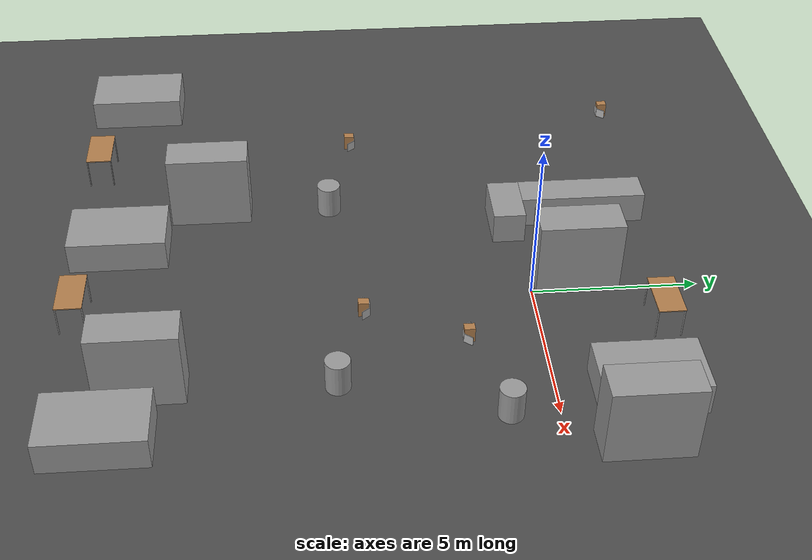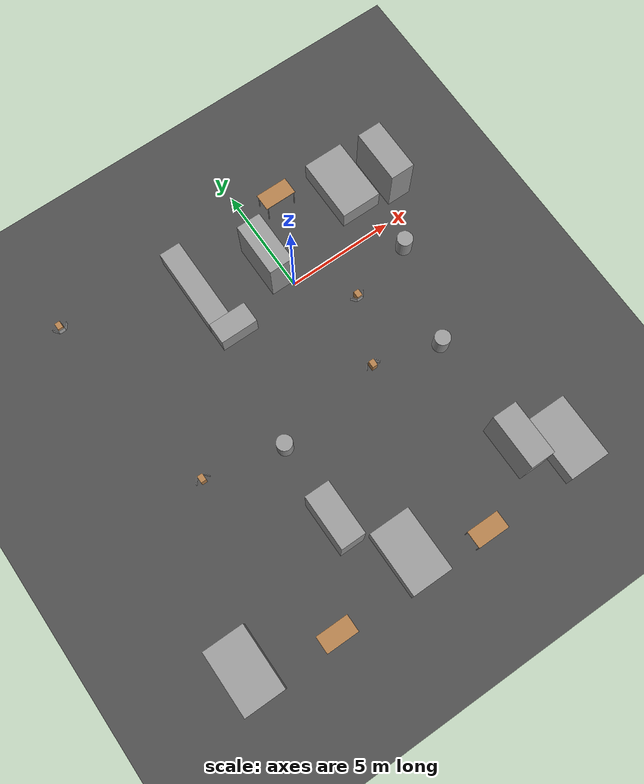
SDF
<sdf version="1.6">
 <world name="default">
  <model name="ground_plane">
   <static>1</static>
   <link name="link">
    <collision name="collision">
     <geometry><plane><normal>0 0 1</normal><size>100 100</size></plane></geometry>
     <surface><friction><ode><mu>100</mu><mu2>50</mu2></ode></friction></surface>
    </collision>
    <visual name="visual">
     <cast_shadows>0</cast_shadows>
     <geometry><plane><normal>0 0 1</normal><size>100 100</size></plane></geometry>
     <material>
      <script><uri>file://media/materials/scripts/gazebo.material</uri><name>Gazebo/DarkGrey</name></script>
     </material>
    </visual>
   </link>
  </model>
  <model name="table">
   <static>1</static>
   <link name="link">
    <collision name="surface">
     <pose>0 0 1 0 -0 0</pose>
     <geometry><box><size>1.5 0.8 0.03</size></box></geometry>
     <surface><friction><ode><mu>0.6</mu><mu2>0.6</mu2></ode></friction></surface>
    </collision>
    <visual name="visual1">
     <pose>0 0 1 0 -0 0</pose>
     <geometry><box><size>1.5 0.8 0.03</size></box></geometry>
     <material>
      <script><uri>file://media/materials/scripts/gazebo.material</uri><name>Gazebo/Wood</name></script>
     </material>
    </visual>
    <collision name="front_left_leg">
     <pose>0.68 0.38 0.5 0 -0 0</pose>
     <geometry><cylinder><radius>0.02</radius><length>1</length></cylinder></geometry>
    </collision>
    <visual name="front_left_leg">
     <pose>0.68 0.38 0.5 0 -0 0</pose>
     <geometry><cylinder><radius>0.02</radius><length>1</length></cylinder></geometry>
     <material>
      <script><uri>file://media/materials/scripts/gazebo.material</uri><name>Gazebo/Grey</name></script>
     </material>
    </visual>
    <collision name="front_right_leg">
     <pose>0.68 -0.38 0.5 0 -0 0</pose>
     <geometry><cylinder><radius>0.02</radius><length>1</length></cylinder></geometry>
    </collision>
    <visual name="front_right_leg">
     <pose>0.68 -0.38 0.5 0 -0 0</pose>
     <geometry><cylinder><radius>0.02</radius><length>1</length></cylinder></geometry>
     <material>
      <script><uri>file://media/materials/scripts/gazebo.material</uri><name>Gazebo/Grey</name></script>
     </material>
    </visual>
    <collision name="back_right_leg">
     <pose>-0.68 -0.38 0.5 0 -0 0</pose>
     <geometry><cylinder><radius>0.02</radius><length>1</length></cylinder></geometry>
    </collision>
    <visual name="back_right_leg">
     <pose>-0.68 -0.38 0.5 0 -0 0</pose>
     <geometry><cylinder><radius>0.02</radius><length>1</length></cylinder></geometry>
     <material>
      <script><uri>file://media/materials/scripts/gazebo.material</uri><name>Gazebo/Grey</name></script>
     </material>
    </visual>
    <collision name="back_left_leg">
     <pose>-0.68 0.38 0.5 0 -0 0</pose>
     <geometry><cylinder><radius>0.02</radius><length>1</length></cylinder></geometry>
    </collision>
    <visual name="back_left_leg">
     <pose>-0.68 0.38 0.5 0 -0 0</pose>
     <geometry><cylinder><radius>0.02</radius><length>1</length></cylinder></geometry>
     <material>
      <script><uri>file://media/materials/scripts/gazebo.material</uri><name>Gazebo/Grey</name></script>
     </material>
    </visual>
   </link>
   <pose>-7.07906 -13.3673 0 0 -0 0</pose>
  </model>
  <model name="unit_box_1_clone">
   <pose>-2.83505 -12.4182 0.5 0 1e-06 1e-06</pose>
   <link name="link">
    <inertial>
     <mass>1</mass>
     <inertia>
      <ixx>0.166667</ixx>
      <ixy>0</ixy>
      <ixz>0</ixz>
      <iyy>0.166667</iyy>
      <iyz>0</iyz>
      <izz>0.166667</izz>
     </inertia>
    </inertial>
    <collision name="collision"><geometry><box><size>1.90543 2.99439 1</size></box></geometry></collision>
    <visual name="visual">
     <geometry><box><size>1.90543 2.99439 1</size></box></geometry>
     <material>
      <script><name>Gazebo/Grey</name><uri>file://media/materials/scripts/gazebo.material</uri></script>
     </material>
    </visual>
   </link>
  </model>
  <model name="unit_box_1_clone_0">
   <pose>5.20571 -12.3359 0.499826 -0.000116 -0 -2e-06</pose>
   <link name="link">
    <inertial>
     <mass>1</mass>
     <inertia>
      <ixx>0.166667</ixx>
      <ixy>0</ixy>
      <ixz>0</ixz>
      <iyy>0.166667</iyy>
      <iyz>0</iyz>
      <izz>0.166667</izz>
     </inertia>
    </inertial>
    <collision name="collision"><geometry><box><size>1.90543 2.99439 1</size></box></geometry></collision>
    <visual name="visual">
     <geometry><box><size>1.90543 2.99439 1</size></box></geometry>
     <material>
      <script><name>Gazebo/Grey</name><uri>file://media/materials/scripts/gazebo.material</uri></script>
     </material>
    </visual>
   </link>
  </model>
  <model name="unit_box_1_clone_5">
   <pose>4.33951 2.52234 0.499989 0 1.2e-05 -0.000106</pose>
   <link name="link">
    <inertial>
     <mass>1</mass>
     <inertia>
      <ixx>0.166667</ixx>
      <ixy>0</ixy>
      <ixz>0</ixz>
      <iyy>0.166667</iyy>
      <iyz>0</iyz>
      <izz>0.166667</izz>
     </inertia>
    </inertial>
    <collision name="collision"><geometry><box><size>1.90543 2.99439 1</size></box></geometry></collision>
    <visual name="visual">
     <geometry><box><size>1.90543 2.99439 1</size></box></geometry>
     <material>
      <script><name>Gazebo/Grey</name><uri>file://media/materials/scripts/gazebo.material</uri></script>
     </material>
    </visual>
   </link>
  </model>
  <model name="unit_cylinder_clone">
   <pose>3.5861 -5.9388 0.499992 0 -0 0</pose>
   <link name="link">
    <inertial>
     <mass>1</mass>
     <inertia><ixx>0.145833</ixx><ixy>0</ixy><ixz>0</ixz><iyy>0.145833</iyy><iyz>0</iyz><izz>0.125</izz></inertia>
    </inertial>
    <collision name="collision">
     <geometry><cylinder><radius>0.361483</radius><length>1</length></cylinder></geometry>
    </collision>
    <visual name="visual">
     <geometry><cylinder><radius>0.361483</radius><length>1</length></cylinder></geometry>
     <material>
      <script><name>Gazebo/Grey</name><uri>file://media/materials/scripts/gazebo.material</uri></script>
     </material>
    </visual>
   </link>
  </model>
  <model name="unit_box_2_clone">
   <pose>3.35905 -11.3146 1.1904 4e-06 -1e-06 8.5e-05</pose>
   <link name="link">
    <inertial>
     <mass>1</mass>
     <inertia>
      <ixx>0.166667</ixx>
      <ixy>0</ixy>
      <ixz>0</ixz>
      <iyy>0.166667</iyy>
      <iyz>0</iyz>
      <izz>0.166667</izz>
     </inertia>
    </inertial>
    <collision name="collision"><geometry><box><size>1.13758 2.51147 2.38082</size></box></geometry></collision>
    <visual name="visual">
     <geometry><box><size>1.13758 2.51147 2.38082</size></box></geometry>
     <material>
      <script><name>Gazebo/Grey</name><uri>file://media/materials/scripts/gazebo.material</uri></script>
     </material>
    </visual>
   </link>
  </model>
  <model name="unit_box_2_clone_5">
   <pose>6.23937 2.00477 1.19041 0 -0 8.3e-05</pose>
   <link name="link">
    <inertial>
     <mass>1</mass>
     <inertia>
      <ixx>0.166667</ixx>
      <ixy>0</ixy>
      <ixz>0</ixz>
      <iyy>0.166667</iyy>
      <iyz>0</iyz>
      <izz>0.166667</izz>
     </inertia>
    </inertial>
    <collision name="collision"><geometry><box><size>1.13758 2.51147 2.38082</size></box></geometry></collision>
    <visual name="visual">
     <geometry><box><size>1.13758 2.51147 2.38082</size></box></geometry>
     <material>
      <script><name>Gazebo/Grey</name><uri>file://media/materials/scripts/gazebo.material</uri></script>
     </material>
    </visual>
   </link>
  </model>
  <model name="unit_box_2_clone_6">
   <pose>-0.469652 1.38013 1.1904 4e-06 -1e-06 8.7e-05</pose>
   <link name="link">
    <inertial>
     <mass>1</mass>
     <inertia>
      <ixx>0.166667</ixx>
      <ixy>0</ixy>
      <ixz>0</ixz>
      <iyy>0.166667</iyy>
      <iyz>0</iyz>
      <izz>0.166667</izz>
     </inertia>
    </inertial>
    <collision name="collision"><geometry><box><size>1.13758 2.51147 2.38082</size></box></geometry></collision>
    <visual name="visual">
     <geometry><box><size>1.13758 2.51147 2.38082</size></box></geometry>
     <material>
      <script><name>Gazebo/Grey</name><uri>file://media/materials/scripts/gazebo.material</uri></script>
     </material>
    </visual>
   </link>
  </model>
  <model name="table_clone">
   <static>1</static>
   <link name="link">
    <collision name="surface">
     <pose>0 0 1 0 -0 0</pose>
     <geometry><box><size>1.5 0.8 0.03</size></box></geometry>
     <surface><friction><ode><mu>0.6</mu><mu2>0.6</mu2></ode></friction></surface>
    </collision>
    <visual name="visual1">
     <pose>0 0 1 0 -0 0</pose>
     <geometry><box><size>1.5 0.8 0.03</size></box></geometry>
     <material>
      <script><uri>file://media/materials/scripts/gazebo.material</uri><name>Gazebo/Wood</name></script>
     </material>
    </visual>
    <collision name="front_left_leg">
     <pose>0.68 0.38 0.5 0 -0 0</pose>
     <geometry><cylinder><radius>0.02</radius><length>1</length></cylinder></geometry>
    </collision>
    <visual name="front_left_leg">
     <pose>0.68 0.38 0.5 0 -0 0</pose>
     <geometry><cylinder><radius>0.02</radius><length>1</length></cylinder></geometry>
     <material>
      <script><uri>file://media/materials/scripts/gazebo.material</uri><name>Gazebo/Grey</name></script>
     </material>
    </visual>
    <collision name="front_right_leg">
     <pose>0.68 -0.38 0.5 0 -0 0</pose>
     <geometry><cylinder><radius>0.02</radius><length>1</length></cylinder></geometry>
    </collision>
    <visual name="front_right_leg">
     <pose>0.68 -0.38 0.5 0 -0 0</pose>
     <geometry><cylinder><radius>0.02</radius><length>1</length></cylinder></geometry>
     <material>
      <script><uri>file://media/materials/scripts/gazebo.material</uri><name>Gazebo/Grey</name></script>
     </material>
    </visual>
    <collision name="back_right_leg">
     <pose>-0.68 -0.38 0.5 0 -0 0</pose>
     <geometry><cylinder><radius>0.02</radius><length>1</length></cylinder></geometry>
    </collision>
    <visual name="back_right_leg">
     <pose>-0.68 -0.38 0.5 0 -0 0</pose>
     <geometry><cylinder><radius>0.02</radius><length>1</length></cylinder></geometry>
     <material>
      <script><uri>file://media/materials/scripts/gazebo.material</uri><name>Gazebo/Grey</name></script>
     </material>
    </visual>
    <collision name="back_left_leg">
     <pose>-0.68 0.38 0.5 0 -0 0</pose>
     <geometry><cylinder><radius>0.02</radius><length>1</length></cylinder></geometry>
    </collision>
    <visual name="back_left_leg">
     <pose>-0.68 0.38 0.5 0 -0 0</pose>
     <geometry><cylinder><radius>0.02</radius><length>1</length></cylinder></geometry>
     <material>
      <script><uri>file://media/materials/scripts/gazebo.material</uri><name>Gazebo/Grey</name></script>
     </material>
    </visual>
   </link>
   <pose>0.212931 -13.4896 0 0 -0 0</pose>
  </model>
  <model name="table_clone_5">
   <static>1</static>
   <link name="link">
    <collision name="surface">
     <pose>0 0 1 0 -0 0</pose>
     <geometry><box><size>1.5 0.8 0.03</size></box></geometry>
     <surface><friction><ode><mu>0.6</mu><mu2>0.6</mu2></ode></friction></surface>
    </collision>
    <visual name="visual1">
     <pose>0 0 1 0 -0 0</pose>
     <geometry><box><size>1.5 0.8 0.03</size></box></geometry>
     <material>
      <script><uri>file://media/materials/scripts/gazebo.material</uri><name>Gazebo/Wood</name></script>
     </material>
    </visual>
    <collision name="front_left_leg">
     <pose>0.68 0.38 0.5 0 -0 0</pose>
     <geometry><cylinder><radius>0.02</radius><length>1</length></cylinder></geometry>
    </collision>
    <visual name="front_left_leg">
     <pose>0.68 0.38 0.5 0 -0 0</pose>
     <geometry><cylinder><radius>0.02</radius><length>1</length></cylinder></geometry>
     <material>
      <script><uri>file://media/materials/scripts/gazebo.material</uri><name>Gazebo/Grey</name></script>
     </material>
    </visual>
    <collision name="front_right_leg">
     <pose>0.68 -0.38 0.5 0 -0 0</pose>
     <geometry><cylinder><radius>0.02</radius><length>1</length></cylinder></geometry>
    </collision>
    <visual name="front_right_leg">
     <pose>0.68 -0.38 0.5 0 -0 0</pose>
     <geometry><cylinder><radius>0.02</radius><length>1</length></cylinder></geometry>
     <material>
      <script><uri>file://media/materials/scripts/gazebo.material</uri><name>Gazebo/Grey</name></script>
     </material>
    </visual>
    <collision name="back_right_leg">
     <pose>-0.68 -0.38 0.5 0 -0 0</pose>
     <geometry><cylinder><radius>0.02</radius><length>1</length></cylinder></geometry>
    </collision>
    <visual name="back_right_leg">
     <pose>-0.68 -0.38 0.5 0 -0 0</pose>
     <geometry><cylinder><radius>0.02</radius><length>1</length></cylinder></geometry>
     <material>
      <script><uri>file://media/materials/scripts/gazebo.material</uri><name>Gazebo/Grey</name></script>
     </material>
    </visual>
    <collision name="back_left_leg">
     <pose>-0.68 0.38 0.5 0 -0 0</pose>
     <geometry><cylinder><radius>0.02</radius><length>1</length></cylinder></geometry>
    </collision>
    <visual name="back_left_leg">
     <pose>-0.68 0.38 0.5 0 -0 0</pose>
     <geometry><cylinder><radius>0.02</radius><length>1</length></cylinder></geometry>
     <material>
      <script><uri>file://media/materials/scripts/gazebo.material</uri><name>Gazebo/Grey</name></script>
     </material>
    </visual>
   </link>
   <pose>1.53607 3.61586 0 0 -0 0</pose>
  </model>
  <model name="Support_box_wood_clone">
   <link name="link">
    <inertial>
     <mass>0.0406949</mass>
     <inertia>
      <ixx>0.00114102</ixx>
      <ixy>0</ixy>
      <ixz>0</ixz>
      <iyy>0.00102768</iyy>
      <iyz>0</iyz>
      <izz>0.000581951</izz>
     </inertia>
    </inertial>
    <pose>0.062754 0.860403 -0.243846 0 -0 0</pose>
    <visual name="visual">
     <geometry><box><size>0.252854 0.320175 0.483682</size></box></geometry>
     <material>
      <script><name>Gazebo/Wood</name><uri>file://media/materials/scripts/gazebo.material</uri></script>
      <shader type="vertex"><normal_map>__default__</normal_map></shader>
      <ambient>0.3 0.3 0.3 1</ambient>
      <diffuse>0.7 0.7 0.7 1</diffuse>
      <specular>0.01 0.01 0.01 1</specular>
      <emissive>0 0 0 1</emissive>
     </material>
    </visual>
    <visual name="ModelPreview_4::link::visual_1">
     <geometry><box><size>0.252854 0.320175 0.483682</size></box></geometry>
     <material>
      <script><name>Gazebo/Wood</name><uri>file://media/materials/scripts/gazebo.material</uri></script>
      <shader type="vertex"><normal_map>__default__</normal_map></shader>
      <ambient>0.3 0.3 0.3 1</ambient>
      <diffuse>0.7 0.7 0.7 1</diffuse>
      <specular>0.01 0.01 0.01 1</specular>
      <emissive>0 0 0 1</emissive>
     </material>
    </visual>
    <collision name="collision">
     <geometry><box><size>0.262854 0.320175 0.483683</size></box></geometry>
     <surface>
      <friction>
       <ode><mu>1</mu><mu2>1</mu2><fdir1>0 0 0</fdir1><slip1>0</slip1><slip2>0</slip2></ode>
       <torsional>
        <coefficient>1</coefficient>
        <patch_radius>0</patch_radius>
        <surface_radius>0</surface_radius>
        <use_patch_radius>1</use_patch_radius>
        <ode><slip>0</slip></ode>
       </torsional>
      </friction>
      <bounce><restitution_coefficient>0</restitution_coefficient><threshold>1e+06</threshold></bounce>
      <contact>
       <collide_without_contact>0</collide_without_contact>
       <collide_without_contact_bitmask>1</collide_without_contact_bitmask>
       <collide_bitmask>1</collide_bitmask>
       <ode>
        <soft_cfm>0</soft_cfm>
        <soft_erp>0.2</soft_erp>
        <kp>1e+13</kp>
        <kd>1</kd>
        <max_vel>0.01</max_vel>
        <min_depth>0</min_depth>
       </ode>
       <bullet>
        <split_impulse>1</split_impulse>
        <split_impulse_penetration_threshold>-0.01</split_impulse_penetration_threshold>
        <soft_cfm>0</soft_cfm>
        <soft_erp>0.2</soft_erp>
        <kp>1e+13</kp>
        <kd>1</kd>
       </bullet>
      </contact>
     </surface>
    </collision>
   </link>
   <static>0</static>
   <pose>0.557098 -5.92548 0.485688 -0 -0 -0.000578</pose>
  </model>
  <model name="Support_box_wood_clone_1">
   <link name="link">
    <inertial>
     <mass>0.0406949</mass>
     <inertia>
      <ixx>0.00114102</ixx>
      <ixy>0</ixy>
      <ixz>0</ixz>
      <iyy>0.00102768</iyy>
      <iyz>0</iyz>
      <izz>0.000581951</izz>
     </inertia>
    </inertial>
    <pose>0.062754 0.860403 -0.243846 0 -0 0</pose>
    <visual name="visual">
     <geometry><box><size>0.252854 0.320175 0.483682</size></box></geometry>
     <material>
      <script><name>Gazebo/Wood</name><uri>file://media/materials/scripts/gazebo.material</uri></script>
      <shader type="vertex"><normal_map>__default__</normal_map></shader>
      <ambient>0.3 0.3 0.3 1</ambient>
      <diffuse>0.7 0.7 0.7 1</diffuse>
      <specular>0.01 0.01 0.01 1</specular>
      <emissive>0 0 0 1</emissive>
     </material>
    </visual>
    <visual name="ModelPreview_4::link::visual_1">
     <geometry><box><size>0.252854 0.320175 0.483682</size></box></geometry>
     <material>
      <script><name>Gazebo/Wood</name><uri>file://media/materials/scripts/gazebo.material</uri></script>
      <shader type="vertex"><normal_map>__default__</normal_map></shader>
      <ambient>0.3 0.3 0.3 1</ambient>
      <diffuse>0.7 0.7 0.7 1</diffuse>
      <specular>0.01 0.01 0.01 1</specular>
      <emissive>0 0 0 1</emissive>
     </material>
    </visual>
    <collision name="collision">
     <geometry><box><size>0.262854 0.320175 0.483683</size></box></geometry>
     <surface>
      <friction>
       <ode><mu>1</mu><mu2>1</mu2><fdir1>0 0 0</fdir1><slip1>0</slip1><slip2>0</slip2></ode>
       <torsional>
        <coefficient>1</coefficient>
        <patch_radius>0</patch_radius>
        <surface_radius>0</surface_radius>
        <use_patch_radius>1</use_patch_radius>
        <ode><slip>0</slip></ode>
       </torsional>
      </friction>
      <bounce><restitution_coefficient>0</restitution_coefficient><threshold>1e+06</threshold></bounce>
      <contact>
       <collide_without_contact>0</collide_without_contact>
       <collide_without_contact_bitmask>1</collide_without_contact_bitmask>
       <collide_bitmask>1</collide_bitmask>
       <ode>
        <soft_cfm>0</soft_cfm>
        <soft_erp>0.2</soft_erp>
        <kp>1e+13</kp>
        <kd>1</kd>
        <max_vel>0.01</max_vel>
        <min_depth>0</min_depth>
       </ode>
       <bullet>
        <split_impulse>1</split_impulse>
        <split_impulse_penetration_threshold>-0.01</split_impulse_penetration_threshold>
        <soft_cfm>0</soft_cfm>
        <soft_erp>0.2</soft_erp>
        <kp>1e+13</kp>
        <kd>1</kd>
       </bullet>
      </contact>
     </surface>
    </collision>
   </link>
   <static>0</static>
   <pose>-9.55632 3.17912 0.485687 0 -0 0</pose>
  </model>
  <model name="Support_box_wood_clone_1_clone">
   <link name="link">
    <inertial>
     <mass>0.0406949</mass>
     <inertia>
      <ixx>0.00114102</ixx>
      <ixy>0</ixy>
      <ixz>0</ixz>
      <iyy>0.00102768</iyy>
      <iyz>0</iyz>
      <izz>0.000581951</izz>
     </inertia>
    </inertial>
    <pose>0.062754 0.860403 -0.243846 0 -0 0</pose>
    <visual name="visual">
     <geometry><box><size>0.252854 0.320175 0.483682</size></box></geometry>
     <material>
      <script><name>Gazebo/Wood</name><uri>file://media/materials/scripts/gazebo.material</uri></script>
      <shader type="vertex"><normal_map>__default__</normal_map></shader>
      <ambient>0.3 0.3 0.3 1</ambient>
      <diffuse>0.7 0.7 0.7 1</diffuse>
      <specular>0.01 0.01 0.01 1</specular>
      <emissive>0 0 0 1</emissive>
     </material>
    </visual>
    <visual name="ModelPreview_4::link::visual_1">
     <geometry><box><size>0.252854 0.320175 0.483682</size></box></geometry>
     <material>
      <script><name>Gazebo/Wood</name><uri>file://media/materials/scripts/gazebo.material</uri></script>
      <shader type="vertex"><normal_map>__default__</normal_map></shader>
      <ambient>0.3 0.3 0.3 1</ambient>
      <diffuse>0.7 0.7 0.7 1</diffuse>
      <specular>0.01 0.01 0.01 1</specular>
      <emissive>0 0 0 1</emissive>
     </material>
    </visual>
    <collision name="collision">
     <geometry><box><size>0.262854 0.320175 0.483683</size></box></geometry>
     <surface>
      <friction>
       <ode><mu>1</mu><mu2>1</mu2><fdir1>0 0 0</fdir1><slip1>0</slip1><slip2>0</slip2></ode>
       <torsional>
        <coefficient>1</coefficient>
        <patch_radius>0</patch_radius>
        <surface_radius>0</surface_radius>
        <use_patch_radius>1</use_patch_radius>
        <ode><slip>0</slip></ode>
       </torsional>
      </friction>
      <bounce><restitution_coefficient>0</restitution_coefficient><threshold>1e+06</threshold></bounce>
      <contact>
       <collide_without_contact>0</collide_without_contact>
       <collide_without_contact_bitmask>1</collide_without_contact_bitmask>
       <collide_bitmask>1</collide_bitmask>
       <ode>
        <soft_cfm>0</soft_cfm>
        <soft_erp>0.2</soft_erp>
        <kp>1e+13</kp>
        <kd>1</kd>
        <max_vel>0.01</max_vel>
        <min_depth>0</min_depth>
       </ode>
       <bullet>
        <split_impulse>1</split_impulse>
        <split_impulse_penetration_threshold>-0.01</split_impulse_penetration_threshold>
        <soft_cfm>0</soft_cfm>
        <soft_erp>0.2</soft_erp>
        <kp>1e+13</kp>
        <kd>1</kd>
       </bullet>
      </contact>
     </surface>
    </collision>
   </link>
   <static>0</static>
   <pose>1.86797 -2.97385 0.485687 0 -0 0.0004</pose>
  </model>
  <model name="Aruco tag200">
   <static>1</static>
   <link name="robot_link">
    <visual name="body_visual">
     <geometry><box><size>0.3 0.3 0.02</size></box></geometry>
     <material>
      <script><uri>model://tag_200/materials/scripts/tag.material</uri><name>aruco_tag_200</name></script>
     </material>
    </visual>
   </link>
   <pose>-9.50073 3.86665 0.2 -1.57 0 0</pose>
  </model>
  <model name="Aruco tag200_clone">
   <static>1</static>
   <link name="robot_link">
    <visual name="body_visual">
     <geometry><box><size>0.3 0.3 0.02</size></box></geometry>
     <material>
      <script><uri>model://tag_200/materials/scripts/tag.material</uri><name>aruco_tag_200</name></script>
     </material>
    </visual>
   </link>
   <pose>-9.25389 3.98449 0.2 -1.57 -0 0.909999</pose>
  </model>
  <model name="Aruco tag200_clone_clone">
   <static>1</static>
   <link name="robot_link">
    <visual name="body_visual">
     <geometry><box><size>0.3 0.3 0.02</size></box></geometry>
     <material>
      <script><uri>model://tag_200/materials/scripts/tag.material</uri><name>aruco_tag_200</name></script>
     </material>
    </visual>
   </link>
   <pose>-9.74954 3.98724 0.2 -1.57 -0 -0.909999</pose>
  </model>
  <model name="Aruco tag100">
   <static>1</static>
   <link name="robot_link">
    <visual name="body_visual">
     <geometry><box><size>0.3 0.3 0.02</size></box></geometry>
     <material>
      <script><uri>model://tag_100/materials/scripts/tag.material</uri><name>aruco_tag_100</name></script>
     </material>
    </visual>
   </link>
   <pose>-8.06491 -4.89398 0.2 1.57 -0 0</pose>
  </model>
  <model name="Aruco tag100_clone">
   <static>1</static>
   <link name="robot_link">
    <visual name="body_visual">
     <geometry><box><size>0.3 0.3 0.02</size></box></geometry>
     <material>
      <script><uri>model://tag_100/materials/scripts/tag.material</uri><name>aruco_tag_100</name></script>
     </material>
    </visual>
   </link>
   <pose>-8.31219 -5.01566 0.2 1.57 -0 0.909999</pose>
  </model>
  <model name="Aruco tag100_clone_clone">
   <static>1</static>
   <link name="robot_link">
    <visual name="body_visual">
     <geometry><box><size>0.3 0.3 0.02</size></box></geometry>
     <material>
      <script><uri>model://tag_100/materials/scripts/tag.material</uri><name>aruco_tag_100</name></script>
     </material>
    </visual>
   </link>
   <pose>-7.81879 -5.01373 0.2 1.57 -0 -0.909999</pose>
  </model>
  <model name="Aruco tag101">
   <static>1</static>
   <link name="robot_link">
    <visual name="body_visual">
     <geometry><box><size>0.3 0.3 0.02</size></box></geometry>
     <material>
      <script><uri>model://tag_101/materials/scripts/tag.material</uri><name>aruco_tag_101</name></script>
     </material>
    </visual>
   </link>
   <pose>0.61676 -4.88489 0.2 1.57 -0 0</pose>
  </model>
  <model name="Aruco tag101_clone">
   <static>1</static>
   <link name="robot_link">
    <visual name="body_visual">
     <geometry><box><size>0.3 0.3 0.02</size></box></geometry>
     <material>
      <script><uri>model://tag_101/materials/scripts/tag.material</uri><name>aruco_tag_101</name></script>
     </material>
    </visual>
   </link>
   <pose>0.866554 -5.00558 0.2 1.57018 -0.000503 -0.91</pose>
  </model>
  <model name="Aruco tag101_clone_0">
   <static>1</static>
   <link name="robot_link">
    <visual name="body_visual">
     <geometry><box><size>0.3 0.3 0.02</size></box></geometry>
     <material>
      <script><uri>model://tag_101/materials/scripts/tag.material</uri><name>aruco_tag_101</name></script>
     </material>
    </visual>
   </link>
   <pose>0.368134 -5.00584 0.2 1.57 -0 0.909999</pose>
  </model>
  <model name="Aruco tag108">
   <static>1</static>
   <link name="robot_link">
    <visual name="body_visual">
     <geometry><box><size>0.3 0.3 0.02</size></box></geometry>
     <material>
      <script><uri>model://tag_108/materials/scripts/tag.material</uri><name>aruco_tag_108</name></script>
     </material>
    </visual>
   </link>
   <pose>1.93213 -2.28115 0.2 1.57 -0 0</pose>
  </model>
  <model name="Aruco tag108_clone">
   <static>1</static>
   <link name="robot_link">
    <visual name="body_visual">
     <geometry><box><size>0.3 0.3 0.02</size></box></geometry>
     <material>
      <script><uri>model://tag_108/materials/scripts/tag.material</uri><name>aruco_tag_108</name></script>
     </material>
    </visual>
   </link>
   <pose>1.68575 -2.16248 0.2 1.57 -0 -0.909999</pose>
  </model>
  <model name="Aruco tag108_clone_0">
   <static>1</static>
   <link name="robot_link">
    <visual name="body_visual">
     <geometry><box><size>0.3 0.3 0.02</size></box></geometry>
     <material>
      <script><uri>model://tag_108/materials/scripts/tag.material</uri><name>aruco_tag_108</name></script>
     </material>
    </visual>
   </link>
   <pose>2.1771 -2.16308 0.2 1.57 -0 0.909999</pose>
  </model>
  <model name="unit_box_8">
   <link name="link">
    <inertial>
     <mass>3.91456</mass>
     <inertia><ixx>5.32502</ixx><ixy>0</ixy><ixz>0</ixz><iyy>0.652427</iyy><iyz>0</iyz><izz>5.32502</izz></inertia>
    </inertial>
    <visual name="visual">
     <geometry><box><size>1 3.91455 1</size></box></geometry>
     <material>
      <script><name>Gazebo/Grey</name><uri>file://media/materials/scripts/gazebo.material</uri></script>
     </material>
    </visual>
    <collision name="collision">
     <geometry><box><size>1 3.91455 1</size></box></geometry>
     <surface>
      <friction>
       <ode><mu>1</mu><mu2>1</mu2><fdir1>0 0 0</fdir1><slip1>0</slip1><slip2>0</slip2></ode>
       <torsional>
        <coefficient>1</coefficient>
        <patch_radius>0</patch_radius>
        <surface_radius>0</surface_radius>
        <use_patch_radius>1</use_patch_radius>
        <ode><slip>0</slip></ode>
       </torsional>
      </friction>
      <bounce><restitution_coefficient>0</restitution_coefficient><threshold>1e+06</threshold></bounce>
      <contact>
       <collide_without_contact>0</collide_without_contact>
       <collide_without_contact_bitmask>1</collide_without_contact_bitmask>
       <collide_bitmask>1</collide_bitmask>
       <ode>
        <soft_cfm>0</soft_cfm>
        <soft_erp>0.2</soft_erp>
        <kp>1e+13</kp>
        <kd>1</kd>
        <max_vel>0.01</max_vel>
        <min_depth>0</min_depth>
       </ode>
       <bullet>
        <split_impulse>1</split_impulse>
        <split_impulse_penetration_threshold>-0.01</split_impulse_penetration_threshold>
        <soft_cfm>0</soft_cfm>
        <soft_erp>0.2</soft_erp>
        <kp>1e+13</kp>
        <kd>1</kd>
       </bullet>
      </contact>
     </surface>
    </collision>
   </link>
   <static>0</static>
   <pose>-3.73096 2.13652 0.5 0 -0 2.6e-05</pose>
  </model>
  <model name="unit_box_9">
   <link name="link">
    <inertial>
     <mass>1.7723</mass>
     <inertia>
      <ixx>0.295383</ixx>
      <ixy>0</ixy>
      <ixz>0</ixz>
      <iyy>0.611592</iyy>
      <iyz>0</iyz>
      <izz>0.611592</izz>
     </inertia>
    </inertial>
    <visual name="visual">
     <geometry><box><size>1.77229 1 1</size></box></geometry>
     <material>
      <script><name>Gazebo/Grey</name><uri>file://media/materials/scripts/gazebo.material</uri></script>
     </material>
    </visual>
    <collision name="collision">
     <geometry><box><size>1.77229 1 1</size></box></geometry>
     <surface>
      <friction>
       <ode><mu>1</mu><mu2>1</mu2><fdir1>0 0 0</fdir1><slip1>0</slip1><slip2>0</slip2></ode>
       <torsional>
        <coefficient>1</coefficient>
        <patch_radius>0</patch_radius>
        <surface_radius>0</surface_radius>
        <use_patch_radius>1</use_patch_radius>
        <ode><slip>0</slip></ode>
       </torsional>
      </friction>
      <bounce><restitution_coefficient>0</restitution_coefficient><threshold>1e+06</threshold></bounce>
      <contact>
       <collide_without_contact>0</collide_without_contact>
       <collide_without_contact_bitmask>1</collide_without_contact_bitmask>
       <collide_bitmask>1</collide_bitmask>
       <ode>
        <soft_cfm>0</soft_cfm>
        <soft_erp>0.2</soft_erp>
        <kp>1e+13</kp>
        <kd>1</kd>
        <max_vel>0.01</max_vel>
        <min_depth>0</min_depth>
       </ode>
       <bullet>
        <split_impulse>1</split_impulse>
        <split_impulse_penetration_threshold>-0.01</split_impulse_penetration_threshold>
        <soft_cfm>0</soft_cfm>
        <soft_erp>0.2</soft_erp>
        <kp>1e+13</kp>
        <kd>1</kd>
       </bullet>
      </contact>
     </surface>
    </collision>
   </link>
   <static>0</static>
   <pose>-3.33373 -0.320763 0.499997 1e-06 3e-06 2.2e-05</pose>
  </model>
  <model name="unit_box_1_clone_clone">
   <pose>-10.823 -12.4215 0.499827 -0.000115 0 -1e-06</pose>
   <link name="link">
    <inertial>
     <mass>1</mass>
     <inertia>
      <ixx>0.166667</ixx>
      <ixy>0</ixy>
      <ixz>0</ixz>
      <iyy>0.166667</iyy>
      <iyz>0</iyz>
      <izz>0.166667</izz>
     </inertia>
    </inertial>
    <collision name="collision"><geometry><box><size>1.90543 2.99439 1</size></box></geometry></collision>
    <visual name="visual">
     <geometry><box><size>1.90543 2.99439 1</size></box></geometry>
     <material>
      <script><name>Gazebo/Grey</name><uri>file://media/materials/scripts/gazebo.material</uri></script>
     </material>
    </visual>
   </link>
  </model>
  <model name="unit_box_2_clone_clone">
   <pose>-4.60276 -9.65037 1.19041 0 -0 8.8e-05</pose>
   <link name="link">
    <inertial>
     <mass>1</mass>
     <inertia>
      <ixx>0.166667</ixx>
      <ixy>0</ixy>
      <ixz>0</ixz>
      <iyy>0.166667</iyy>
      <iyz>0</iyz>
      <izz>0.166667</izz>
     </inertia>
    </inertial>
    <collision name="collision"><geometry><box><size>1.13758 2.51147 2.38082</size></box></geometry></collision>
    <visual name="visual">
     <geometry><box><size>1.13758 2.51147 2.38082</size></box></geometry>
     <material>
      <script><name>Gazebo/Grey</name><uri>file://media/materials/scripts/gazebo.material</uri></script>
     </material>
    </visual>
   </link>
  </model>
  <model name="unit_cylinder_clone_clone">
   <pose>4.96212 -1.35365 0.499992 0 -0 0</pose>
   <link name="link">
    <inertial>
     <mass>1</mass>
     <inertia><ixx>0.145833</ixx><ixy>0</ixy><ixz>0</ixz><iyy>0.145833</iyy><iyz>0</iyz><izz>0.125</izz></inertia>
    </inertial>
    <collision name="collision">
     <geometry><cylinder><radius>0.361483</radius><length>1</length></cylinder></geometry>
    </collision>
    <visual name="visual">
     <geometry><cylinder><radius>0.361483</radius><length>1</length></cylinder></geometry>
     <material>
      <script><name>Gazebo/Grey</name><uri>file://media/materials/scripts/gazebo.material</uri></script>
     </material>
    </visual>
   </link>
  </model>
  <model name="unit_cylinder_clone_clone_0">
   <pose>-4.47974 -5.88275 0.499998 -0 -0 -0</pose>
   <link name="link">
    <inertial>
     <mass>1</mass>
     <inertia><ixx>0.145833</ixx><ixy>0</ixy><ixz>0</ixz><iyy>0.145833</iyy><iyz>0</iyz><izz>0.125</izz></inertia>
    </inertial>
    <collision name="collision">
     <geometry><cylinder><radius>0.361483</radius><length>1</length></cylinder></geometry>
    </collision>
    <visual name="visual">
     <geometry><cylinder><radius>0.361483</radius><length>1</length></cylinder></geometry>
     <material>
      <script><name>Gazebo/Grey</name><uri>file://media/materials/scripts/gazebo.material</uri></script>
     </material>
    </visual>
   </link>
  </model>
  <model name="Support_box_wood_clone_1_clone_0">
   <link name="link">
    <inertial>
     <mass>0.0406949</mass>
     <inertia>
      <ixx>0.00114102</ixx>
      <ixy>0</ixy>
      <ixz>0</ixz>
      <iyy>0.00102768</iyy>
      <iyz>0</iyz>
      <izz>0.000581951</izz>
     </inertia>
    </inertial>
    <pose>0.062754 0.860403 -0.243846 0 -0 0</pose>
    <visual name="visual">
     <geometry><box><size>0.252854 0.320175 0.483682</size></box></geometry>
     <material>
      <script><name>Gazebo/Wood</name><uri>file://media/materials/scripts/gazebo.material</uri></script>
      <shader type="vertex"><normal_map>__default__</normal_map></shader>
      <ambient>0.3 0.3 0.3 1</ambient>
      <diffuse>0.7 0.7 0.7 1</diffuse>
      <specular>0.01 0.01 0.01 1</specular>
      <emissive>0 0 0 1</emissive>
     </material>
    </visual>
    <visual name="ModelPreview_4::link::visual_1">
     <geometry><box><size>0.252854 0.320175 0.483682</size></box></geometry>
     <material>
      <script><name>Gazebo/Wood</name><uri>file://media/materials/scripts/gazebo.material</uri></script>
      <shader type="vertex"><normal_map>__default__</normal_map></shader>
      <ambient>0.3 0.3 0.3 1</ambient>
      <diffuse>0.7 0.7 0.7 1</diffuse>
      <specular>0.01 0.01 0.01 1</specular>
      <emissive>0 0 0 1</emissive>
     </material>
    </visual>
    <collision name="collision">
     <geometry><box><size>0.262854 0.320175 0.483683</size></box></geometry>
     <surface>
      <friction>
       <ode><mu>1</mu><mu2>1</mu2><fdir1>0 0 0</fdir1><slip1>0</slip1><slip2>0</slip2></ode>
       <torsional>
        <coefficient>1</coefficient>
        <patch_radius>0</patch_radius>
        <surface_radius>0</surface_radius>
        <use_patch_radius>1</use_patch_radius>
        <ode><slip>0</slip></ode>
       </torsional>
      </friction>
      <bounce><restitution_coefficient>0</restitution_coefficient><threshold>1e+06</threshold></bounce>
      <contact>
       <collide_without_contact>0</collide_without_contact>
       <collide_without_contact_bitmask>1</collide_without_contact_bitmask>
       <collide_bitmask>1</collide_bitmask>
       <ode>
        <soft_cfm>0</soft_cfm>
        <soft_erp>0.2</soft_erp>
        <kp>1e+13</kp>
        <kd>1</kd>
        <max_vel>0.01</max_vel>
        <min_depth>0</min_depth>
       </ode>
       <bullet>
        <split_impulse>1</split_impulse>
        <split_impulse_penetration_threshold>-0.01</split_impulse_penetration_threshold>
        <soft_cfm>0</soft_cfm>
        <soft_erp>0.2</soft_erp>
        <kp>1e+13</kp>
        <kd>1</kd>
       </bullet>
      </contact>
     </surface>
    </collision>
   </link>
   <static>0</static>
   <pose>-8.12892 -5.92559 0.485688 0 0 -1.1e-05</pose>
  </model>
 </world>
</sdf>
